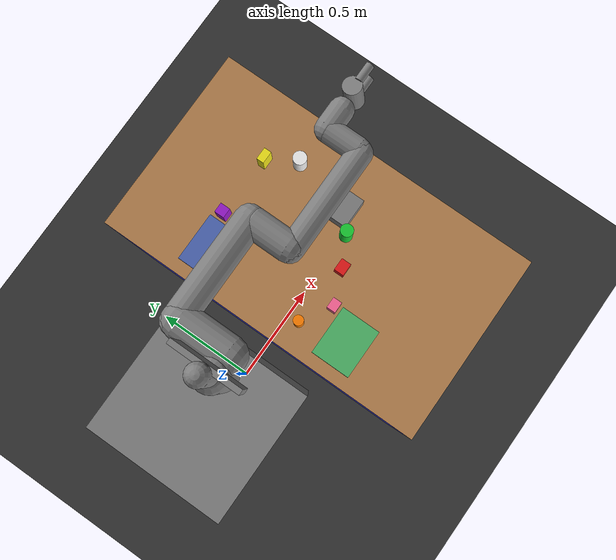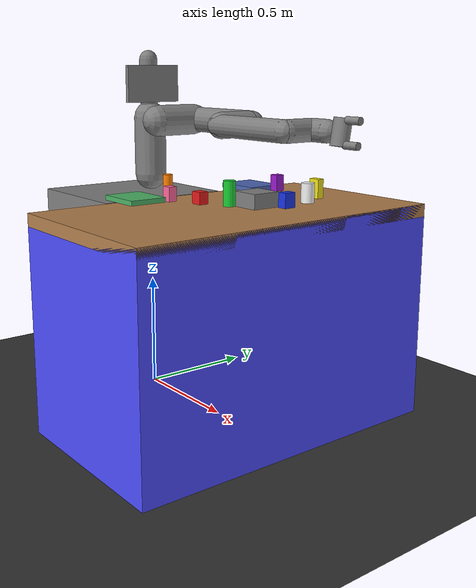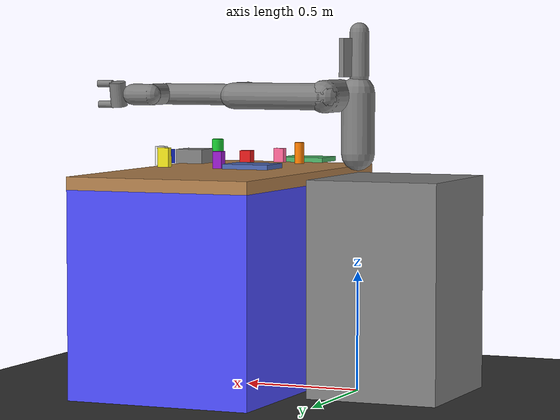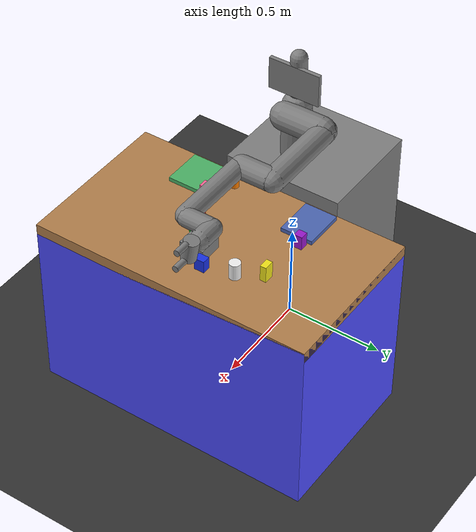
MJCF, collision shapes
<?xml version='1.0' encoding='utf-8'?>
<mujoco model="mesatask_cluttered_me_optimized">
  <compiler angle="radian" coordinate="local"/>
  <option timestep="0.002" gravity="0 0 -9.81" impratio="10" />

  <!-- Higher friction to prevent sliding/spinning; stiffer contacts to prevent sinking into table -->
  <default>
    <geom friction="3.0 0.1 0.01" solref="0.005 1" solimp="0.99 0.999 0.001" condim="4" />
  </default>
  <include file="sawyer-gripper.xml" />

  <asset>
      <texture name="T_table" type="cube" file="textures/wood2.png" />
      <texture name="T_floor" type="2d" file="textures/floor2.png" />

      <material name="table_wood" texture="T_table" shininess=".3" specular="0.5" />
      <material name="table_col" rgba="0.3 0.3 1.0 0.5" shininess="0" specular="0" />

      <mesh file="../meshes/table/tablebody.stl" name="tablebody" scale="1 1 1"/>
      <mesh file="../meshes/table/tabletop.stl" name="tabletop" scale="1 1 1"/>
  </asset>

  <worldbody>
    <light name="key_light" pos="1.2 1.0 2.0" dir="-1 -1 -1" directional="true" diffuse="0.95 0.95 0.95" specular="0.25 0.25 0.25" castshadow="true" />
    <light name="fill_light" pos="-1.0 0.6 1.5" dir="1 -0.2 -1" directional="true" diffuse="0.45 0.45 0.45" specular="0.05 0.05 0.05" castshadow="false" />
    <geom name="ground" type="plane" size="2 2 0.1" pos="0 0 -0.001" rgba="0.2 0.2 0.2 1" />
    <body name="tablelink" pos="0.6 0 0.915" euler="0 0 1.5708">
      <geom name="tablelink" material="table_wood" group="1" type="box" size=".7 .4 .027" pos="0 0 -.027" conaffinity="0" contype="0" />
      <geom name="tablebody" material="table_wood" group="1" mesh="tablebody" pos="0 0 -0.65" type="mesh" conaffinity="0" contype="0" />
      <geom name="tabletop" material="table_col" group="4" pos="0.0 0.0 -0.46" size="0.7 0.4 0.46" type="box" conaffinity="1" contype="1" />
    </body>

    <!-- ===== Landmarks (non-grippable) ===== -->
    <body name="tray_left" pos="0.35 0.30 0.952">
      <geom name="tray_left_geom" type="box" size="0.10 0.08 0.01"
            rgba="0.3 0.4 0.7 1" contype="1" conaffinity="1" />
    </body>
    <body name="tray_right" pos="0.35 -0.30 0.952">
      <geom name="tray_right_geom" type="box" size="0.10 0.08 0.01"
            rgba="0.3 0.7 0.4 1" contype="1" conaffinity="1" />
    </body>
    <body name="bin_center" pos="0.75 0.0 0.972">
      <geom name="bin_center_geom" type="box" size="0.06 0.06 0.03"
            rgba="0.5 0.5 0.5 1" contype="1" conaffinity="1" />
    </body>

    <!-- ===== Grippable objects ===== -->
    <!-- red_block: box 50x40x50mm, z = 0.942 + 0.025 = 0.967 -->
    <body name="red_block" pos="0.566 -0.135 0.967">
      <freejoint/>
      <inertial pos="0 0 0" mass="0.2" diaginertia="0.001 0.001 0.001"/>
      <geom name="red_block_collision" type="box" size="0.025 0.020 0.025"
            rgba="0.9 0.1 0.1 1" contype="1" conaffinity="1"
            friction="8.0 0.005 0.0001" />
    </body>

    <!-- blue_block: box 40x50x60mm, z = 0.942 + 0.030 = 0.972 -->
    <body name="blue_block" pos="0.840 0.076 0.972">
      <freejoint/>
      <inertial pos="0 0 0" mass="0.25" diaginertia="0.001 0.001 0.001"/>
      <geom name="blue_block_collision" type="box" size="0.020 0.025 0.030"
            rgba="0.1 0.2 0.9 1" contype="1" conaffinity="1"
            friction="8.0 0.005 0.0001" />
    </body>

    <!-- green_cylinder: 50mm dia, 100mm tall, z = 0.942 + 0.050 = 0.992 -->
    <body name="green_cylinder" pos="0.676 -0.075 0.992">
      <freejoint/>
      <inertial pos="0 0 0" mass="0.3" diaginertia="0.001 0.001 0.001"/>
      <geom name="green_cylinder_collision" type="cylinder" size="0.025 0.050"
            rgba="0.1 0.8 0.2 1" contype="1" conaffinity="1"
            friction="8.0 0.005 0.0001" />
    </body>

    <!-- yellow_block: box 50x30x80mm, z = 0.942 + 0.040 = 0.982 -->
    <body name="yellow_block" pos="0.734 0.334 0.982">
      <freejoint/>
      <inertial pos="0 0 0" mass="0.2" diaginertia="0.001 0.001 0.001"/>
      <geom name="yellow_block_collision" type="box" size="0.025 0.015 0.040"
            rgba="0.95 0.9 0.1 1" contype="1" conaffinity="1"
            friction="8.0 0.005 0.0001" />
    </body>

    <!-- orange_cylinder: 40mm dia, 90mm tall, z = 0.942 + 0.045 = 0.987 -->
    <body name="orange_cylinder" pos="0.313 -0.118 0.987">
      <freejoint/>
      <inertial pos="0 0 0" mass="0.25" diaginertia="0.001 0.001 0.001"/>
      <geom name="orange_cylinder_collision" type="cylinder" size="0.020 0.045"
            rgba="1.0 0.5 0.0 1" contype="1" conaffinity="1"
            friction="8.0 0.005 0.0001" />
    </body>

    <!-- purple_block: box 40x40x70mm, z = 0.942 + 0.035 = 0.977 -->
    <body name="purple_block" pos="0.482 0.341 0.977">
      <freejoint/>
      <inertial pos="0 0 0" mass="0.2" diaginertia="0.001 0.001 0.001"/>
      <geom name="purple_block_collision" type="box" size="0.020 0.020 0.035"
            rgba="0.6 0.1 0.8 1" contype="1" conaffinity="1"
            friction="8.0 0.005 0.0001" />
    </body>

    <!-- white_cylinder: 54mm dia, 80mm tall, z = 0.942 + 0.040 = 0.982 -->
    <body name="white_cylinder" pos="0.802 0.221 0.982">
      <freejoint/>
      <inertial pos="0 0 0" mass="0.3" diaginertia="0.001 0.001 0.001"/>
      <geom name="white_cylinder_collision" type="cylinder" size="0.027 0.040"
            rgba="0.95 0.95 0.95 1" contype="1" conaffinity="1"
            friction="8.0 0.005 0.0001" />
    </body>

    <!-- pink_block: box 44x36x60mm, z = 0.942 + 0.030 = 0.972 -->
    <body name="pink_block" pos="0.434 -0.190 0.972">
      <freejoint/>
      <inertial pos="0 0 0" mass="0.2" diaginertia="0.001 0.001 0.001"/>
      <geom name="pink_block_collision" type="box" size="0.022 0.018 0.030"
            rgba="1.0 0.4 0.6 1" contype="1" conaffinity="1"
            friction="8.0 0.005 0.0001" />
    </body>
  </worldbody>

  <keyframe>
    <key name="home" qpos="0 -1.1775 0 2.1761 0 0.5663 3.3124 0 0
      0.565563 -0.135456 0.967 1 0 0 0
      0.840127 0.0762059 0.972 1 0 0 0
      0.675678 -0.0753699 0.992 1 0 0 0
      0.733525 0.333669 0.982 1 0 0 0
      0.31341 -0.117861 0.987 1 0 0 0
      0.482196 0.341182 0.977 1 0 0 0
      0.802209 0.221269 0.982 1 0 0 0
      0.43434 -0.189572 0.972 1 0 0 0"/>
  </keyframe>

  <visual>
    <global offwidth="1280" offheight="960" />
    <quality shadowsize="4096" />
    <headlight ambient="0.30 0.30 0.30" diffuse="0.75 0.75 0.75" specular="0.15 0.15 0.15" />
    <map znear="0.01" zfar="50" />
  </visual>
</mujoco>

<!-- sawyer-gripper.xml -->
<mujoco model="sawyer">
  <compiler angle="radian" meshdir="sawyer/assets" autolimits="true"/>

  <option integrator="implicitfast"/>

  <default>
    <default class="sawyer">
      <material specular="0.5" shininess="0.25"/>
      <joint axis="0 0 1"/>
      <general dyntype="none" biastype="affine"/>
      <default class="visual">
        <geom group="2" type="mesh" contype="0" conaffinity="0"/>
      </default>
      <default class="collision">
        <geom group="3" type="capsule" rgba="0.5 0.5 0.5 1"/>
        <default class="eef_collision">
          <geom type="cylinder"/>
        </default>
      </default>
      <site size="0.001" rgba="0.5 0.5 0.5 0.3" group="4"/>

      <default class="large_joint">
        <joint frictionloss="0.3" armature="1" damping="0.1"/>
        <general gainprm="800" biasprm="0 -800 -80" forcerange="-200 200"/>
      </default>
      <default class="medium_joint">
        <joint frictionloss="0.3" armature="1" damping="0.1"/>
        <general gainprm="800" biasprm="0 -800 -80" forcerange="-100 100"/>
      </default>
      <default class="small_joint">
        <joint frictionloss="0.1" armature="1" damping="0.1"/>
        <general gainprm="500" biasprm="0 -500 -50" forcerange="-30 30"/>
      </default>
      <default class="gripper_joint">
        <joint frictionloss="0.1" armature="0.5" damping="0.5"/>
        <general gainprm="1000" biasprm="0 -200 -20" forcerange="-50 50"/>
      </default>
    </default>
  </default>

  <asset>
    <material class="sawyer" name="red" rgba="0.5 0.1 0.1 1"/>
    <material class="sawyer" name="black" rgba="0.2 0.2 0.2 1"/>
    <material class="sawyer" name="white" rgba="1 1 1 1"/>
    <material class="sawyer" name="off_white" rgba="0.792157 0.819608 0.929412 1"/>
    <material class="sawyer" name="Mtl3" rgba="0.168627 0.152941 0.141176 1"/>
    <material class="sawyer" name="Mtl4" rgba="1 0.403922 0.121569 1"/>
    <material class="sawyer" name="Mtl7" rgba="0.250980 0.250980 0.250980 1"/>
    <material class="sawyer" name="dark_black" specular="0.0" shininess="0.25" rgba="0 0 0 1"/>
    <material class="sawyer" name="Mtl5.001" rgba="0.870588 0.309804 0.086275 1"/>
    <material class="sawyer" name="Mtl7.001" rgba="0.698039 0.698039 0.698039 1"/>
    <material class="sawyer" name="Mtl5.002" rgba="0.105882 0.105882 0.105882 1"/>
    <material class="sawyer" name="Mtl6.002" rgba="0.749020 0.749020 0.749020 1"/>
    <material class="sawyer" name="Mtl4_001" rgba="0.866667 0.905882 1 1"/>
    <material class="sawyer" name="Mtl5_001" rgba="0.501961 0.501961 0.501961 1"/>

    <mesh file="pedestal.obj"/>
    <mesh file="base_0.obj"/>
    <mesh file="base_1.obj"/>
    <mesh file="l0_0.obj"/>
    <mesh file="l0_1.obj"/>
    <mesh file="l0_2.obj"/>
    <mesh file="l0_3.obj"/>
    <mesh file="l0_4.obj"/>
    <mesh file="l0_5.obj"/>
    <mesh file="l0_6.obj"/>
    <mesh file="l1_0.obj"/>
    <mesh file="l1_1.obj"/>
    <mesh file="l1_2.obj"/>
    <mesh file="l2_0.obj"/>
    <mesh file="l2_1.obj"/>
    <mesh file="l2_2.obj"/>
    <mesh file="l2_3.obj"/>
    <mesh file="l2_4.obj"/>
    <mesh file="l3_0.obj"/>
    <mesh file="l3_1.obj"/>
    <mesh file="l3_2.obj"/>
    <mesh file="l3_3.obj"/>
    <mesh file="l4_0.obj"/>
    <mesh file="l4_1.obj"/>
    <mesh file="l4_2.obj"/>
    <mesh file="l4_3.obj"/>
    <mesh file="l4_4.obj"/>
    <mesh file="l4_5.obj"/>
    <mesh file="l4_6.obj"/>
    <mesh file="l4_7.obj"/>
    <mesh file="l5_0.obj"/>
    <mesh file="l5_1.obj"/>
    <mesh file="l5_2.obj"/>
    <mesh file="l5_3.obj"/>
    <mesh file="l5_4.obj"/>
    <mesh file="l6_0.obj"/>
    <mesh file="l6_1.obj"/>
    <mesh file="l6_2.obj"/>
    <mesh file="l6_3.obj"/>
    <mesh file="l6_4.obj"/>
    <mesh file="l6_5.obj"/>
    <mesh file="head_0.obj"/>
    <mesh file="head_2.obj"/>
    <mesh file="head_3.obj"/>
    <mesh file="head_5.obj"/>
    <mesh file="head_6.obj"/>
    <mesh file="head_7.obj"/>
    <mesh file="head_8.obj"/>
    <mesh file="head_9.obj"/>
    <mesh file="gripper_body.obj"/>
    <mesh file="gripper_finger_narrow.obj"/>
  </asset>

  <worldbody>
    <light name="top" pos="0 0 2" mode="trackcom"/>
    <body name="pedestal">
      <geom mesh="pedestal" material="black" class="visual"/>
      <geom class="collision" type="box" pos="-0.17 0 0.45" size="0.28 0.3 0.45"/>
      <body name="base" childclass="sawyer" pos="0 0 0.92">
        <inertial mass="2.0687" pos="-0.0006241 -2.8025E-05 0.065404"
          fullinertia="0.0067599 0.0067877 0.0074031 -4.2024E-05 -6.1904E-07 1.5888E-05"/>
        <geom mesh="base_0" material="black" class="visual"/>
        <geom mesh="base_1" material="red" class="visual"/>
        <body name="right_l0" pos="0 0 0.08">
          <inertial mass="5.3213" pos="0.0243645 0.0109688 0.143631" quat="0.894821 0.0089945 -0.17028 0.412576"
            diaginertia="0.0651599 0.0510954 0.0186221"/>
          <joint name="right_j0" class="large_joint" range="-3.0503 3.0503"/>
          <geom mesh="l0_0" material="Mtl7" class="visual"/>
          <geom mesh="l0_1" material="off_white" class="visual"/>
          <geom mesh="l0_2" material="red" class="visual"/>
          <geom mesh="l0_3" material="Mtl4" class="visual"/>
          <geom mesh="l0_4" material="Mtl3" class="visual"/>
          <geom mesh="l0_5" material="white" class="visual"/>
          <geom mesh="l0_6" material="black" class="visual"/>
          <geom class="collision" fromto="0 0 -0.005 0 0 0.25" size="0.07"/>
          <body name="head" pos="0 0 0.2965">
            <inertial mass="1.5795" pos="0.00532226 -2.65473e-05 0.1021"
              quat="0.999993 7.08384e-05 -0.00359812 -0.000626267" diaginertia="0.0118334 0.00827097 0.00496582"/>
            <geom mesh="head_0" material="black" class="visual"/>
            <geom mesh="head_2" material="off_white" class="visual"/>
            <geom mesh="head_3" material="Mtl7" class="visual"/>
            <geom mesh="head_5" material="black" class="visual"/>
            <geom mesh="head_6" material="white" class="visual"/>
            <geom mesh="head_7" material="dark_black" class="visual"/>
            <geom mesh="head_8" material="red" class="visual"/>
            <geom mesh="head_9" material="Mtl5.001" class="visual"/>
            <geom class="collision" fromto="-0.005 0 0.02 -0.005 0 0.205" size="0.04"/>
            <geom class="collision" type="box" pos="0.025 0 0.1" size="0.01 0.13 0.08"/>
          </body>
          <body name="right_l1" pos="0.081 0.05 0.237" quat="1 -1 1 1">
            <inertial mass="4.505" pos="-0.0030849 -0.026811 0.092521" quat="0.424888 0.891987 0.132364 -0.0794294"
              diaginertia="0.0224339 0.0221624 0.00970971"/>
            <joint name="right_j1" class="large_joint" range="-3.8095 2.2736"/>
            <geom mesh="l1_0" material="black" class="visual"/>
            <geom mesh="l1_1" material="red" class="visual"/>
            <geom mesh="l1_2" material="white" class="visual"/>
            <geom class="collision" fromto="0 0 -0.06 0 0 0.13" size="0.068"/>
            <body name="right_l2" pos="0 -0.14 0.1425" quat="1 1 0 0">
              <inertial mass="1.745" pos="-0.00016044 -0.014967 0.13582" quat="0.707831 -0.0524761 0.0516006 0.702537"
                diaginertia="0.0257928 0.025506 0.00292516"/>
              <joint name="right_j2" class="medium_joint" range="-3.0426 3.0426"/>
              <geom mesh="l2_0" material="off_white" class="visual"/>
              <geom mesh="l2_1" material="Mtl5.002" class="visual"/>
              <geom mesh="l2_2" material="white" class="visual"/>
              <geom mesh="l2_3" material="black" class="visual"/>
              <geom mesh="l2_4" material="red" class="visual"/>
              <geom class="collision" fromto="0 0 -0.15 0 0 0.26" size="0.055"/>
              <body name="right_l3" pos="0 -0.042 0.26" quat="1 -1 0 0">
                <inertial mass="2.5097" pos="-0.0048135 -0.0281 -0.084154" quat="0.902999 0.385391 -0.0880901 0.168247"
                  diaginertia="0.0102404 0.0096997 0.00369622"/>
                <joint name="right_j3" class="medium_joint" range="-3.0439 3.0439"/>
                <geom mesh="l3_0" material="off_white" class="visual"/>
                <geom mesh="l3_1" material="red" class="visual"/>
                <geom mesh="l3_2" material="white" class="visual"/>
                <geom mesh="l3_3" material="black" class="visual"/>
                <geom class="collision" fromto="0 0 -0.115 0 0 0.03" size="0.055"/>
                <body name="right_l4" pos="0 -0.125 -0.1265" quat="1 1 0 0">
                  <inertial mass="1.1136" pos="-0.00188917 0.00689948 0.134095"
                    quat="0.803247 0.031244 -0.0298409 0.594077" diaginertia="0.0136555 0.0135498 0.00127385"/>
                  <joint name="right_j4" class="small_joint" range="-2.9761 2.9761"/>
                  <geom mesh="l4_0" material="Mtl7" class="visual"/>
                  <geom mesh="l4_1" material="black" class="visual"/>
                  <geom mesh="l4_2" material="Mtl6.002" class="visual"/>
                  <geom mesh="l4_3" material="white" class="visual"/>
                  <geom mesh="l4_4" material="off_white" class="visual"/>
                  <geom mesh="l4_5" material="dark_black" class="visual"/>
                  <geom mesh="l4_6" material="red" class="visual"/>
                  <geom mesh="l4_7" material="black" class="visual"/>
                  <geom class="collision" fromto="0 0 -0.13 0 0 0.27" size="0.045"/>
                  <body name="right_l5" pos="0 0.031 0.275" quat="1 -1 0 0">
                    <inertial mass="1.5625" pos="0.0061133 -0.023697 0.076416" quat="0.404076 0.9135 0.0473125 0.00158335"
                      diaginertia="0.00474131 0.00422857 0.00190672"/>
                    <joint name="right_j5" class="small_joint" range="-2.9761 2.9761"/>
                    <geom mesh="l5_0" material="Mtl5_001" class="visual"/>
                    <geom mesh="l5_1" material="Mtl4_001" class="visual"/>
                    <geom mesh="l5_2" material="white" class="visual"/>
                    <geom mesh="l5_3" material="red" class="visual"/>
                    <geom mesh="l5_4" material="black" class="visual"/>
                    <geom fromto="0 0 -0.02 0 0 0.1" size="0.045" class="collision"/>
                    <geom fromto="0 0 0.105 0 -0.082 0.105" size="0.045" class="collision"/>
                    <body name="right_l6" pos="0 -0.11 0.1053" quat="0.0616248 0.06163 -0.704416 0.704416">
                      <inertial mass="0.3292" pos="-8.0726e-06 0.0085838 -0.0049566"
                        quat="0.479044 0.515636 -0.513069 0.491321" diaginertia="0.000360268 0.000311078 0.000214984"/>
                      <joint name="right_j6" class="small_joint" range="-4.7124 4.7124"/>
                      <geom mesh="l6_0" material="Mtl4" class="visual"/>
                      <geom mesh="l6_1" material="white" class="visual"/>
                      <geom mesh="l6_2" material="red" class="visual"/>
                      <geom mesh="l6_3" material="black" class="visual"/>
                      <geom mesh="l6_4" material="black" class="visual"/>
                      <geom mesh="l6_5" material="black" class="visual"/>
                      <site name="attachment_site" pos="0 0 0.0245" quat="0 0 0 1"/>
                      <body name="gripper_body" pos="0 0 0.02" quat="0.7071068 0 0 0.7071068">
                        <site name="end_effector" pos="0 0 0.0545" quat="0 0 0 1"/>
                        <camera name="wrist_camera" pos="0.09 0 0.02" xyaxes="0 1 0 0.774 0 0.633" fovy="85"/>
                        <inertial mass="0.3292" pos="0 0 0" quat="0 0 0 1" diaginertia="0.0003 0.0003 0.0003"/>
                        <geom mesh="gripper_body" material="red" class="visual"/>
                        <geom class="eef_collision" pos="0 0 0.024" quat="0.7071 0.7071 0 0" size="0.035 0.052" contype="0" conaffinity="0"/>
                        <body name="gripper_finger_right" pos="0.002 0.028 0.045" quat="0 0 0 1">
                          <inertial mass="0.0907185" pos="0 0 0" quat="0 0 0 1" diaginertia="0.0003 0.0003 0.0003"/>
                          <geom mesh="gripper_finger_narrow" material="black" class="visual"/>
                          <joint name="gripper_right_close" type="slide" class="gripper_joint" pos="0 0 0" axis="0 1 0" range="0 0.035"/>
                          <geom class="eef_collision" pos="0.003 -0.0165 0.039" size="0.015 0.034" friction="5.0 0.1 0.01" contype="1" conaffinity="1"/>
                        </body>
                        <body name="gripper_finger_left" pos="0.0035 -0.028 0.045" quat="1 0 0 0">
                          <inertial mass="0.0907185" pos="0 0 0" quat="0 0 0 1" diaginertia="0.0000001 0.0000001 0.0000001"/>
                          <geom mesh="gripper_finger_narrow" material="black" class="visual"/>
                          <geom class="eef_collision" pos="0.003 -0.0165 0.039" size="0.015 0.034" friction="5.0 0.1 0.01" contype="1" conaffinity="1"/>
                          <joint name="gripper_left_close" type="slide" class="gripper_joint" pos="0 0 0" axis="0 1 0" range="0 0.035"/>
                        </body>
                      </body>
                    </body>
                  </body>
                </body>
              </body>
            </body>
          </body>
        </body>
      </body>
    </body>
  </worldbody>

  <contact>
    <exclude body1="base" body2="right_l0"/>
  </contact>

  <actuator>
    <general name="a0" joint="right_j0" class="large_joint" ctrlrange="-3.0503 3.0503"/>
    <general name="a1" joint="right_j1" class="large_joint" ctrlrange="-3.8095 2.2736"/>
    <general name="a2" joint="right_j2" class="medium_joint" ctrlrange="-3.0426 3.0426"/>
    <general name="a3" joint="right_j3" class="medium_joint" ctrlrange="-3.0439 3.0439"/>
    <general name="a4" joint="right_j4" class="small_joint" ctrlrange="-2.9761 2.9761"/>
    <general name="a5" joint="right_j5" class="small_joint" ctrlrange="-2.9761 2.9761"/>
    <general name="a6" joint="right_j6" class="small_joint" ctrlrange="-4.7124 4.7124"/>
    <general name="figer_right" joint="gripper_right_close" class="gripper_joint" ctrlrange="0 0.035"/>
    <general name="figer_left" joint="gripper_left_close" class="gripper_joint" ctrlrange="0 0.035"/>
  </actuator>

</mujoco>
